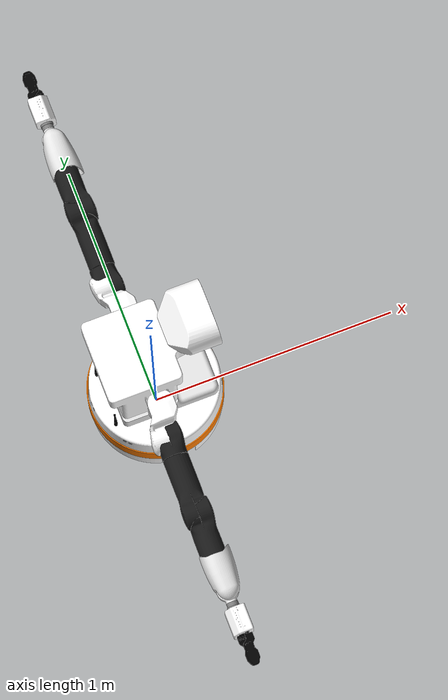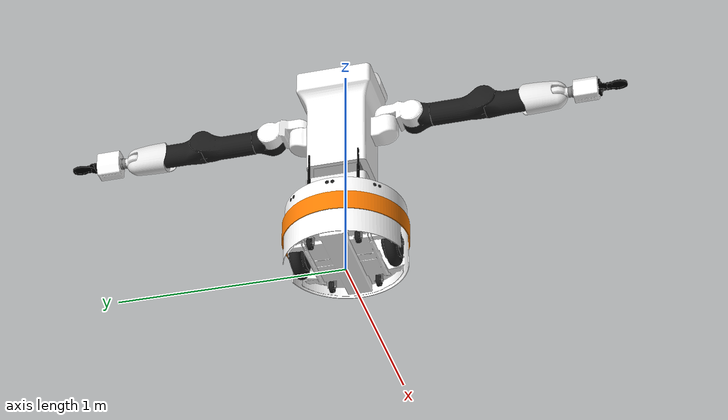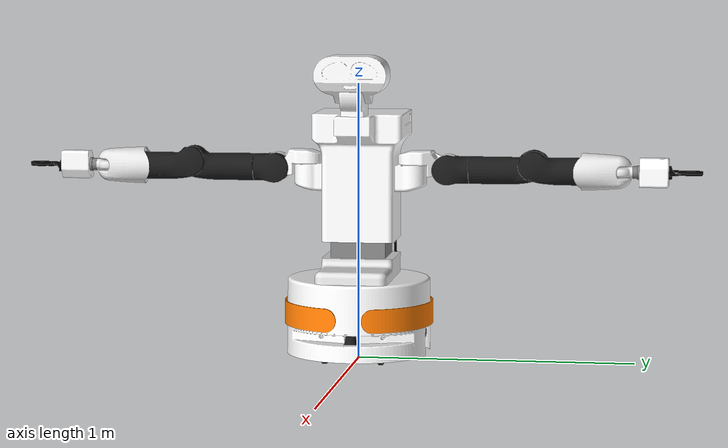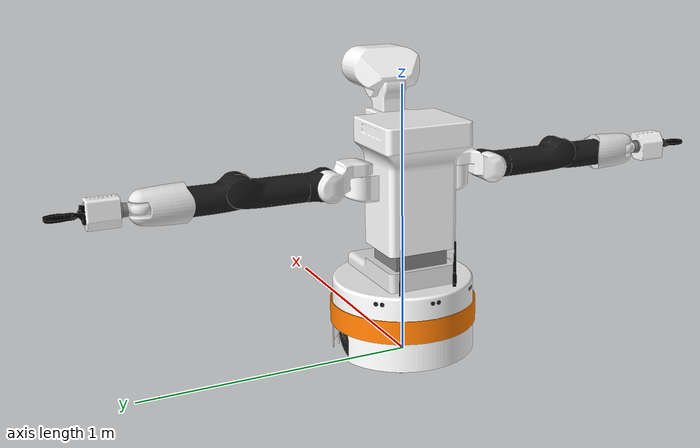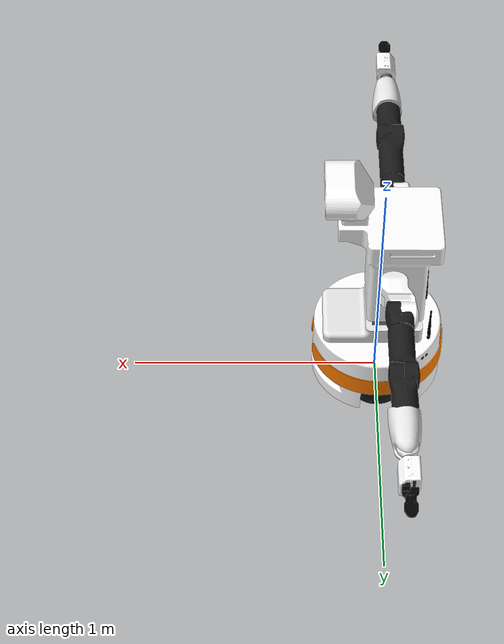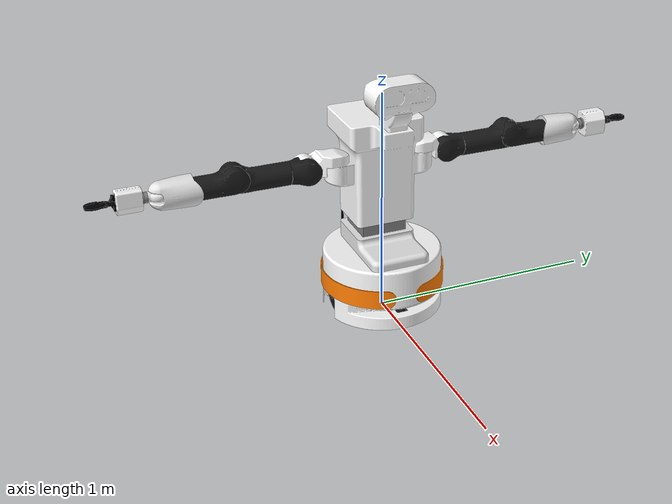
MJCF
<?xml version="1.0" ?>
<mujoco model="tiago_dual">
	<compiler meshdir="../assets/meshes" texturedir="../assets/textures" angle="radian" autolimits="true" balanceinertia="true" boundmass="0.000001" boundinertia="0.000001"/>
	<default>
		<default class="tiago_dual_visual">
			<geom contype="0" conaffinity="0"/>
		</default>
		<default class="tiago_dual_collision">
			<geom rgba="1.0 0.0 0.0 0.0"/>
		</default>
	</default>
	<asset>
		<mesh name="base" file="stl/base.stl" scale="1.0 1.0 1.0"/>
		<mesh name="base_collision" file="stl/base_collision.stl" scale="1.0 1.0 1.0"/>
		<mesh name="sick_tim551" file="stl/sick_tim551.stl" scale="1.0 1.0 1.0"/>
		<mesh name="srf05" file="stl/srf05.stl" scale="1.0 1.0 1.0"/>
		<mesh name="antenna" file="stl/antenna.stl" scale="1.0 1.0 1.0"/>
		<mesh name="torso_fix" file="stl/torso_fix.stl" scale="1.0 1.0 1.0"/>
		<mesh name="base_ring" file="stl/base_ring.stl" scale="1.0 1.0 1.0"/>
		<mesh name="wheel" file="stl/wheel.stl" scale="1.0 1.0 1.0"/>
		<mesh name="caster_1" file="stl/caster_1.stl" scale="1.0 1.0 1.0"/>
		<mesh name="caster_2" file="stl/caster_2.stl" scale="1.0 1.0 1.0"/>
		<mesh name="torso_lift_dual_arm" file="stl/torso_lift_dual_arm.stl" scale="1.0 1.0 1.0"/>
		<mesh name="torso_lift_collision_shoulder" file="stl/torso_lift_collision_shoulder.stl" scale="1.0 1.0 1.0"/>
		<mesh name="torso_lift_collision_core" file="stl/torso_lift_collision_core.stl" scale="1.0 1.0 1.0"/>
		<mesh name="torso_lift_collision_neck" file="stl/torso_lift_collision_neck.stl" scale="1.0 1.0 1.0"/>
		<mesh name="head_1" file="stl/head_1.stl" scale="1.0 1.0 1.0"/>
		<mesh name="head_1_collision" file="stl/head_1_collision.stl" scale="1.0 1.0 1.0"/>
		<mesh name="head_2" file="stl/head_2.stl" scale="1.0 1.0 1.0"/>
		<mesh name="head_2_collision" file="stl/head_2_collision.stl" scale="1.0 1.0 1.0"/>
		<mesh name="arm_1" file="stl/arm_1.stl" scale="1.0 1.0 1.0"/>
		<mesh name="arm_1__1_0__1_0__1_0" file="stl/arm_1.stl" scale="-1.0 -1.0 -1.0"/>
		<mesh name="arm_1_collision" file="stl/arm_1_collision.stl" scale="1.0 1.0 1.0"/>
		<mesh name="arm_1_collision__1_0__1_0__1_0" file="stl/arm_1_collision.stl" scale="-1.0 -1.0 -1.0"/>
		<mesh name="arm_2" file="stl/arm_2.stl" scale="1.0 1.0 1.0"/>
		<mesh name="arm_2__1_0__1_0__1_0" file="stl/arm_2.stl" scale="-1.0 -1.0 -1.0"/>
		<mesh name="arm_2_collision" file="stl/arm_2_collision.stl" scale="1.0 1.0 1.0"/>
		<mesh name="arm_2_collision__1_0__1_0__1_0" file="stl/arm_2_collision.stl" scale="-1.0 -1.0 -1.0"/>
		<mesh name="arm_3" file="stl/arm_3.stl" scale="1.0 1.0 1.0"/>
		<mesh name="arm_3__1_0__1_0__1_0" file="stl/arm_3.stl" scale="-1.0 -1.0 -1.0"/>
		<mesh name="arm_3_collision" file="stl/arm_3_collision.stl" scale="1.0 1.0 1.0"/>
		<mesh name="arm_3_collision__1_0__1_0__1_0" file="stl/arm_3_collision.stl" scale="-1.0 -1.0 -1.0"/>
		<mesh name="arm_4" file="stl/arm_4.stl" scale="1.0 1.0 1.0"/>
		<mesh name="arm_4__1_0__1_0__1_0" file="stl/arm_4.stl" scale="-1.0 -1.0 -1.0"/>
		<mesh name="arm_4_collision" file="stl/arm_4_collision.stl" scale="1.0 1.0 1.0"/>
		<mesh name="arm_4_collision__1_0__1_0__1_0" file="stl/arm_4_collision.stl" scale="-1.0 -1.0 -1.0"/>
		<mesh name="arm_5_wrist_2017" file="stl/arm_5_wrist_2017.stl" scale="1.0 1.0 1.0"/>
		<mesh name="arm_5_wrist_2017__1_0__1_0__1_0" file="stl/arm_5_wrist_2017.stl" scale="-1.0 -1.0 -1.0"/>
		<mesh name="arm_5_collision_wrist_2017" file="stl/arm_5_collision_wrist_2017.stl" scale="1.0 1.0 1.0"/>
		<mesh name="arm_5_collision_wrist_2017__1_0__1_0__1_0" file="stl/arm_5_collision_wrist_2017.stl" scale="-1.0 -1.0 -1.0"/>
		<mesh name="arm_6_wrist_2017" file="stl/arm_6_wrist_2017.stl" scale="1.0 1.0 1.0"/>
		<mesh name="arm_6_wrist_2017__1_0__1_0__1_0" file="stl/arm_6_wrist_2017.stl" scale="-1.0 -1.0 -1.0"/>
		<mesh name="arm_6_collision_wrist_2017" file="stl/arm_6_collision_wrist_2017.stl" scale="1.0 1.0 1.0"/>
		<mesh name="arm_6_collision_wrist_2017__1_0__1_0__1_0" file="stl/arm_6_collision_wrist_2017.stl" scale="-1.0 -1.0 -1.0"/>
		<mesh name="gripper_link" file="stl/gripper_link.stl" scale="1.0 1.0 1.0"/>
		<mesh name="gripper_link_collision" file="stl/gripper_link_collision.stl" scale="1.0 1.0 1.0"/>
		<mesh name="gripper_finger_link_1_000092625617981_0_9999073147773743_1_0" file="stl/gripper_finger_link.stl" scale="1.000092625617981 0.9999073147773743 1.0"/>
		<mesh name="gripper_finger_link__1_000092625617981__0_9999073147773743_1_0" file="stl/gripper_finger_link.stl" scale="-1.000092625617981 -0.9999073147773743 1.0"/>
		<material name="M_White" rgba="1.0 1.0 1.0 1.0" emission="0.0"/>
		<material name="M_DarkGrey" rgba="0.10000000149011612 0.10000000149011612 0.10000000149011612 1.0" emission="0.0"/>
		<material name="M_Black" rgba="0.0 0.0 0.0 1.0"/>
		<material name="M_LightGrey" rgba="0.8999999761581421 0.8999999761581421 0.8999999761581421 1.0" emission="0.0"/>
		<material name="M_Orange" rgba="1.0 0.4869999885559082 0.0 1.0"/>
		<material name="M_Grey" rgba="0.699999988079071 0.699999988079071 0.699999988079071 1.0" emission="0.0"/>
	</asset>
	<worldbody>
		<body name="tiago_dual" pos="0.0 0.0 0.0" quat="1.0 0.0 0.0 0.0">
			<joint name="odom_vel_lin_x_joint" type="slide" axis="1.0 0.0 0.0"/>
			<joint name="odom_vel_lin_y_joint" type="slide" axis="0.0 1.0 0.0"/>
			<joint name="odom_vel_ang_z_joint" type="hinge" axis="0.0 0.0 1.0"/>
			<body name="base_footprint" pos="0.0 0.0 0.0" quat="1.0 0.0 0.0 0.0">
				<body name="base_cover_link" pos="0.0 0.0 0.12999999523162842" quat="1.0 0.0 0.0 0.0">
					<inertial mass="0.533096194267273" pos="-0.01842234469950199 -1.1418089584935842e-08 0.17250001430511475" quat="0.7070515155792236 0.008976935409009457 0.008978109806776047 0.7070480585098267" diaginertia="0.018984170630574226 0.021554354578256607 0.03799857571721077"/>
					<geom name="base_cover_link_geom_tiago_dual_visual_0_base_ring" type="mesh" pos="0.0 0.0 0.0" quat="1.0 0.0 0.0 0.0" mesh="base_ring" material="M_Orange" class="tiago_dual_visual"/>
				</body>
				<body name="base_link" pos="0.0 0.0 0.09849999845027924" quat="1.0 0.0 0.0 0.0">
					<inertial mass="4.583009719848633" pos="0.008795303292572498 4.891760181635618e-05 0.18509966135025024" quat="0.9999969601631165 -0.0009502366883680224 0.0022169812582433224 -0.0005487297312356532" diaginertia="0.19431790709495544 0.21078379452228546 0.24757026135921478"/>
					<geom name="base_link_geom_tiago_dual_visual_0_base" type="mesh" pos="0.0 0.0 0.0" quat="1.0 0.0 0.0 0.0" mesh="base" material="M_White" class="tiago_dual_visual"/>
					<geom name="base_link_geom_collision_0_base_collision" type="mesh" pos="0.0 0.0 0.0" quat="1.0 0.0 0.0 0.0" mesh="base_collision" class="tiago_dual_collision"/>
					<body name="base_sonar_03_link" pos="-0.18299999833106995 0.18299999833106995 0.17299999296665192" quat="0.3826834261417389 0.0 0.0 0.9238795042037964">
						<inertial mass="0.0032655922695994377" pos="-0.17975224554538727 0.1797652393579483 0.1729976385831833" quat="0.7072985172271729 0.002778780646622181 0.0014203093014657497 0.706908106803894" diaginertia="1.5969527566994657e-07 6.359992426041572e-07 6.706197837047512e-07"/>
						<geom name="base_sonar_03_link_geom_tiago_dual_visual_0_srf05" type="mesh" pos="0.0 0.0 0.0" quat="1.0 0.0 0.0 0.0" mesh="srf05" material="M_DarkGrey" class="tiago_dual_visual"/>
					</body>
					<body name="base_sonar_01_link" pos="-0.18299999833106995 -0.18299999833106995 0.17299999296665192" quat="-0.3826834261417389 0.0 0.0 0.9238795042037964">
						<inertial mass="0.0032655922695994377" pos="-0.1797652393579483 -0.17975224554538727 0.1729976385831833" quat="0.7072985172271729 0.002778780646622181 0.0014203093014657497 0.706908106803894" diaginertia="1.5969527566994657e-07 6.359992426041572e-07 6.706197837047512e-07"/>
						<geom name="base_sonar_01_link_geom_tiago_dual_visual_0_srf05" type="mesh" pos="0.0 0.0 0.0" quat="1.0 0.0 0.0 0.0" mesh="srf05" material="M_DarkGrey" class="tiago_dual_visual"/>
					</body>
					<body name="base_mic_front_right_link" pos="0.2318200021982193 -0.03901999816298485 0.19499999284744263" quat="1.0 0.0 0.0 0.0"/>
					<body name="base_mic_back_right_link" pos="-0.10819999873638153 -0.13788999617099762 0.19499999284744263" quat="1.0 0.0 0.0 0.0"/>
					<body name="base_antenna_right_link" pos="-0.20100000500679016 -0.10620000213384628 0.19499999284744263" quat="1.0 0.0 0.0 0.0">
						<inertial mass="0.028692401945590973" pos="-0.20105348527431488 -0.10619985312223434 0.2664972245693207" quat="-0.0014542610151693225 0.7070494294166565 0.0014557811664417386 0.7071611285209656" diaginertia="4.4050278802387766e-07 0.0002167977945646271 0.00021680167992599308"/>
						<geom name="base_antenna_right_link_geom_tiago_dual_visual_0_antenna" type="mesh" pos="0.0 0.0 0.0" quat="1.0 0.0 0.0 0.0" mesh="antenna" material="M_Black" class="tiago_dual_visual"/>
						<geom name="base_antenna_right_link_geom_collision_0" type="cylinder" pos="0.0 0.0 0.08500000089406967" quat="1.0 0.0 0.0 0.0" size="0.004999999888241291 0.08500000089406967 0.0" class="tiago_dual_collision"/>
					</body>
					<body name="suspension_right_link" pos="0.0 0.0 0.0" quat="1.0 0.0 0.0 0.0">
						<joint name="suspension_right_joint" type="slide" pos="0.0 0.0 0.0" range="-0.004999999888241291 0.004999999888241291" axis="0.0 0.0 1.0"/>
						<body name="wheel_right_link" pos="0.0 -0.2021999955177307 0.0" quat="0.7071067690849304 -0.7071067690849304 0.0 0.0">
							<inertial mass="4.9378132820129395" pos="-2.407864485576283e-06 -0.20232069492340088 0.0984966903924942" quat="-0.7033625841140747 0.00011322840873617679 0.00013592917821370065 0.7108312845230103" diaginertia="0.01838645152747631 0.018392162397503853 0.02075279876589775"/>
							<geom name="wheel_right_link_geom_tiago_dual_visual_0_wheel" type="mesh" pos="0.0 0.0 0.0" quat="1.0 0.0 0.0 0.0" mesh="wheel" material="M_DarkGrey" class="tiago_dual_visual"/>
							<geom name="wheel_right_link_geom_collision_0" type="sphere" pos="0.0 0.0 0.0" quat="1.0 0.0 0.0 0.0" size="0.09849999845027924 0.0 0.0" class="tiago_dual_collision"/>
							<joint name="wheel_right_joint" type="hinge" pos="0.0 0.0 0.0" axis="0.0 0.0 1.0"/>
						</body>
					</body>
					<body name="suspension_left_link" pos="0.0 0.0 0.0" quat="1.0 0.0 0.0 0.0">
						<joint name="suspension_left_joint" type="slide" pos="0.0 0.0 0.0" range="-0.004999999888241291 0.004999999888241291" axis="0.0 0.0 1.0"/>
						<body name="wheel_left_link" pos="0.0 0.2021999955177307 0.0" quat="0.7071067690849304 -0.7071067690849304 0.0 0.0">
							<inertial mass="4.9378132820129395" pos="-2.407864485576283e-06 0.20232069492340088 0.09850330650806427" quat="0.7108312845230103 -0.00013592917821370065 -0.00011322840873617679 -0.7033625841140747" diaginertia="0.01838645152747631 0.018392162397503853 0.02075279876589775"/>
							<geom name="wheel_left_link_geom_tiago_dual_visual_0_wheel" type="mesh" pos="0.0 0.0 0.0" quat="-6.123234262925839e-17 1.0 0.0 0.0" mesh="wheel" material="M_DarkGrey" class="tiago_dual_visual"/>
							<geom name="wheel_left_link_geom_collision_0" type="sphere" pos="0.0 0.0 0.0" quat="1.0 0.0 0.0 0.0" size="0.09849999845027924 0.0 0.0" class="tiago_dual_collision"/>
							<joint name="wheel_left_joint" type="hinge" pos="0.0 0.0 0.0" axis="0.0 0.0 1.0"/>
						</body>
					</body>
					<body name="caster_front_right_1_link" pos="0.16949999332427979 -0.10199999809265137 -0.03350000083446503" quat="1.0 0.0 0.0 0.0">
						<inertial mass="0.012721667066216469" pos="0.1584390103816986 -0.10197509080171585 0.03501972556114197" quat="0.5640944242477417 -5.7430843298789114e-05 0.8257097601890564 0.0009352568886242807" diaginertia="1.7161858067993307e-06 1.6465297449030913e-05 1.6936963220359758e-05"/>
						<geom name="caster_front_right_1_link_geom_tiago_dual_visual_0_caster_1" type="mesh" pos="0.0 0.0 0.0" quat="1.0 0.0 0.0 0.0" mesh="caster_1" material="M_Grey" class="tiago_dual_visual"/>
						<joint name="caster_front_right_1_joint" type="hinge" pos="0.0 0.0 0.0" axis="0.0 0.0 1.0"/>
						<body name="caster_front_right_2_link" pos="-0.01600000075995922 0.0 -0.03999999910593033" quat="0.7071067690849304 -0.7071067690849304 0.0 0.0">
							<inertial mass="0.0963592454791069" pos="0.15349917113780975 -0.10200051963329315 0.024999601766467094" quat="-0.5353952646255493 1.7683147234492935e-05 2.6323896236135624e-06 0.8446016311645508" diaginertia="2.267268610012252e-05 2.2677813831251115e-05 2.7069650968769565e-05"/>
							<geom name="caster_front_right_2_link_geom_tiago_dual_visual_0_caster_2" type="mesh" pos="0.0 0.0 0.0" quat="1.0 0.0 0.0 0.0" mesh="caster_2" material="M_DarkGrey" class="tiago_dual_visual"/>
							<geom name="caster_front_right_2_link_geom_collision_0" type="sphere" pos="0.0 0.0 0.0" quat="1.0 0.0 0.0 0.0" size="0.02500000037252903 0.0 0.0" class="tiago_dual_collision"/>
							<joint name="caster_front_right_2_joint" type="hinge" pos="0.0 0.0 0.0" axis="0.0 0.0 1.0"/>
						</body>
					</body>
					<body name="caster_front_left_1_link" pos="0.16949999332427979 0.10199999809265137 -0.03350000083446503" quat="1.0 0.0 0.0 0.0">
						<inertial mass="0.012721667066216469" pos="0.1584390103816986 0.10202490538358688 0.03501972556114197" quat="0.5640944242477417 -5.7430843298789114e-05 0.8257097601890564 0.0009352568886242807" diaginertia="1.7161858067993307e-06 1.6465297449030913e-05 1.6936963220359758e-05"/>
						<geom name="caster_front_left_1_link_geom_tiago_dual_visual_0_caster_1" type="mesh" pos="0.0 0.0 0.0" quat="1.0 0.0 0.0 0.0" mesh="caster_1" material="M_Grey" class="tiago_dual_visual"/>
						<joint name="caster_front_left_1_joint" type="hinge" pos="0.0 0.0 0.0" axis="0.0 0.0 1.0"/>
						<body name="caster_front_left_2_link" pos="-0.01600000075995922 0.0 -0.03999999910593033" quat="0.7071067690849304 -0.7071067690849304 0.0 0.0">
							<inertial mass="0.0963592454791069" pos="0.15349917113780975 0.10199947655200958 0.024999601766467094" quat="-0.5353952646255493 1.7683147234492935e-05 2.6323896236135624e-06 0.8446016311645508" diaginertia="2.267268610012252e-05 2.2677813831251115e-05 2.7069650968769565e-05"/>
							<geom name="caster_front_left_2_link_geom_tiago_dual_visual_0_caster_2" type="mesh" pos="0.0 0.0 0.0" quat="1.0 0.0 0.0 0.0" mesh="caster_2" material="M_DarkGrey" class="tiago_dual_visual"/>
							<geom name="caster_front_left_2_link_geom_collision_0" type="sphere" pos="0.0 0.0 0.0" quat="1.0 0.0 0.0 0.0" size="0.02500000037252903 0.0 0.0" class="tiago_dual_collision"/>
							<joint name="caster_front_left_2_joint" type="hinge" pos="0.0 0.0 0.0" axis="0.0 0.0 1.0"/>
						</body>
					</body>
					<body name="caster_back_right_1_link" pos="-0.17350000143051147 -0.10199999809265137 -0.03350000083446503" quat="1.0 0.0 0.0 0.0">
						<inertial mass="0.012721667066216469" pos="-0.18456098437309265 -0.10197509080171585 0.03501972556114197" quat="0.5640944242477417 -5.7430843298789114e-05 0.8257097601890564 0.0009352568886242807" diaginertia="1.7161858067993307e-06 1.6465297449030913e-05 1.6936963220359758e-05"/>
						<geom name="caster_back_right_1_link_geom_tiago_dual_visual_0_caster_1" type="mesh" pos="0.0 0.0 0.0" quat="1.0 0.0 0.0 0.0" mesh="caster_1" material="M_Grey" class="tiago_dual_visual"/>
						<joint name="caster_back_right_1_joint" type="hinge" pos="0.0 0.0 0.0" axis="0.0 0.0 1.0"/>
						<body name="caster_back_right_2_link" pos="-0.01600000075995922 0.0 -0.03999999910593033" quat="0.7071067690849304 -0.7071067690849304 0.0 0.0">
							<inertial mass="0.0963592454791069" pos="-0.1895008236169815 -0.10200051963329315 0.024999601766467094" quat="-0.5353952646255493 1.7683147234492935e-05 2.6323896236135624e-06 0.8446016311645508" diaginertia="2.267268610012252e-05 2.2677813831251115e-05 2.7069650968769565e-05"/>
							<geom name="caster_back_right_2_link_geom_tiago_dual_visual_0_caster_2" type="mesh" pos="0.0 0.0 0.0" quat="1.0 0.0 0.0 0.0" mesh="caster_2" material="M_DarkGrey" class="tiago_dual_visual"/>
							<geom name="caster_back_right_2_link_geom_collision_0" type="sphere" pos="0.0 0.0 0.0" quat="1.0 0.0 0.0 0.0" size="0.02500000037252903 0.0 0.0" class="tiago_dual_collision"/>
							<joint name="caster_back_right_2_joint" type="hinge" pos="0.0 0.0 0.0" axis="0.0 0.0 1.0"/>
						</body>
					</body>
					<body name="caster_back_left_1_link" pos="-0.17350000143051147 0.10199999809265137 -0.03350000083446503" quat="1.0 0.0 0.0 0.0">
						<inertial mass="0.012721667066216469" pos="-0.18456098437309265 0.10202490538358688 0.03501972556114197" quat="0.5640944242477417 -5.7430843298789114e-05 0.8257097601890564 0.0009352568886242807" diaginertia="1.7161858067993307e-06 1.6465297449030913e-05 1.6936963220359758e-05"/>
						<geom name="caster_back_left_1_link_geom_tiago_dual_visual_0_caster_1" type="mesh" pos="0.0 0.0 0.0" quat="1.0 0.0 0.0 0.0" mesh="caster_1" material="M_Grey" class="tiago_dual_visual"/>
						<joint name="caster_back_left_1_joint" type="hinge" pos="0.0 0.0 0.0" axis="0.0 0.0 1.0"/>
						<body name="caster_back_left_2_link" pos="-0.01600000075995922 0.0 -0.03999999910593033" quat="0.7071067690849304 -0.7071067690849304 0.0 0.0">
							<inertial mass="0.0963592454791069" pos="-0.1895008236169815 0.10199947655200958 0.024999601766467094" quat="-0.5353952646255493 1.7683147234492935e-05 2.6323896236135624e-06 0.8446016311645508" diaginertia="2.267268610012252e-05 2.2677813831251115e-05 2.7069650968769565e-05"/>
							<geom name="caster_back_left_2_link_geom_tiago_dual_visual_0_caster_2" type="mesh" pos="0.0 0.0 0.0" quat="1.0 0.0 0.0 0.0" mesh="caster_2" material="M_DarkGrey" class="tiago_dual_visual"/>
							<geom name="caster_back_left_2_link_geom_collision_0" type="sphere" pos="0.0 0.0 0.0" quat="1.0 0.0 0.0 0.0" size="0.02500000037252903 0.0 0.0" class="tiago_dual_collision"/>
							<joint name="caster_back_left_2_joint" type="hinge" pos="0.0 0.0 0.0" axis="0.0 0.0 1.0"/>
						</body>
					</body>
					<body name="torso_fixed_link" pos="-0.06199999898672104 0.0 0.19300000369548798" quat="1.0 0.0 0.0 0.0">
						<inertial mass="16.431100845336914" pos="-0.01745390146970749 1.3471870285997056e-09 0.23027999699115753" quat="0.998907744884491 -4.543129428213888e-09 -0.046725716441869736 2.8892905845623318e-08" diaginertia="0.11975406110286713 0.24629473686218262 0.30280017852783203"/>
						<geom name="torso_fixed_link_geom_tiago_dual_visual_0_torso_fix" type="mesh" pos="0.0 0.0 0.0" quat="1.0 0.0 0.0 0.0" mesh="torso_fix" material="M_LightGrey" class="tiago_dual_visual"/>
						<geom name="torso_fixed_link_geom_collision_0" type="box" pos="0.08500000089406967 0.0 0.019999999552965164" quat="1.0 0.0 0.0 0.0" size="0.20000000298023224 0.125 0.019999999552965164" class="tiago_dual_collision"/>
						<geom name="torso_fixed_link_geom_collision_1" type="box" pos="0.0 0.0 0.05000000074505806" quat="1.0 0.0 0.0 0.0" size="0.125 0.125 0.05000000074505806" class="tiago_dual_collision"/>
						<body name="torso_lift_link" pos="0.0 0.0 0.597000002861023" quat="1.0 0.0 0.0 0.0">
							<inertial mass="80.00180053710938" pos="-0.06386889517307281 3.838672273559496e-05 0.6812766790390015" quat="-0.6953124403953552 0.12151610851287842 0.6976648569107056 0.12263037264347076" diaginertia="1.1445907354354858 5.456185817718506 5.476551532745361"/>
							<geom name="torso_lift_link_geom_tiago_dual_visual_0_torso_lift_dual_arm" type="mesh" pos="0.0 0.0 0.0" quat="1.0 0.0 0.0 0.0" mesh="torso_lift_dual_arm" material="M_White" class="tiago_dual_visual"/>
							<geom name="torso_lift_link_geom_collision_0_torso_lift_collision_shoulder" type="mesh" pos="-0.13099999725818634 0.17000000178813934 -0.02556000091135502" quat="1.0 0.0 0.0 0.0" mesh="torso_lift_collision_shoulder" class="tiago_dual_collision"/>
							<geom name="torso_lift_link_geom_collision_1_torso_lift_collision_shoulder" type="mesh" pos="-0.13099999725818634 -0.1899999976158142 -0.02556000091135502" quat="1.0 0.0 0.0 0.0" mesh="torso_lift_collision_shoulder" class="tiago_dual_collision"/>
							<geom name="torso_lift_link_geom_collision_2_torso_lift_collision_core" type="mesh" pos="0.0 0.0 0.0" quat="1.0 0.0 0.0 0.0" mesh="torso_lift_collision_core" class="tiago_dual_collision"/>
							<geom name="torso_lift_link_geom_collision_3_torso_lift_collision_neck" type="mesh" pos="0.0 0.0 0.0" quat="1.0 0.0 0.0 0.0" mesh="torso_lift_collision_neck" class="tiago_dual_collision"/>
							<joint name="torso_lift_joint" type="slide" pos="0.0 0.0 0.0" range="0.0 0.800000011920929" axis="0.0 0.0 1.0"/>
							<body name="arm_left_1_link" pos="0.02556000091135502 0.1899999976158142 -0.17100000381469727" quat="4.329780301713277e-17 0.7071067690849304 0.7071067690849304 4.329780301713277e-17">
								<inertial mass="2.326556444168091" pos="-0.062415264546871185 0.26109611988067627 0.7068326473236084" quat="0.9397298693656921 -0.2696459889411926 -0.05045083537697792 -0.20409207046031952" diaginertia="0.002655229065567255 0.02464391104876995 0.024779949337244034"/>
								<geom name="arm_left_1_link_geom_tiago_dual_visual_0_arm_1" type="mesh" pos="0.0 0.0 0.0" quat="6.123234262925839e-17 1.0 0.0 0.0" mesh="arm_1" material="M_White" class="tiago_dual_visual"/>
								<geom name="arm_left_1_link_geom_collision_0_arm_1_collision" type="mesh" pos="0.0 0.0 0.0" quat="6.123234262925839e-17 1.0 0.0 0.0" mesh="arm_1_collision" class="tiago_dual_collision"/>
								<joint name="arm_left_1_joint" type="hinge" pos="0.0 0.0 0.0" range="-1.1780972480773926 1.5707963705062866" axis="0.0 0.0 1.0"/>
								<body name="arm_left_2_link" pos="0.125 -0.019500000402331352 0.03099999949336052" quat="0.7071067690849304 0.7071067690849304 -3.189250438235362e-17 3.189250438235362e-17">
									<inertial mass="1.2833430767059326" pos="-0.06404110789299011 0.3396865129470825 0.6863976120948792" quat="0.004454121924936771 0.9991291165351868 0.0009602801874279976 -0.041475653648376465" diaginertia="0.0018821029225364327 0.003341596806421876 0.0034246365539729595"/>
									<geom name="arm_left_2_link_geom_tiago_dual_visual_0_arm_2" type="mesh" pos="0.0 0.0 0.0" quat="6.123234262925839e-17 0.0 0.0 1.0" mesh="arm_2__1_0__1_0__1_0" material="M_DarkGrey" class="tiago_dual_visual"/>
									<geom name="arm_left_2_link_geom_collision_0_arm_2_collision" type="mesh" pos="0.0 0.0 0.0" quat="6.123234262925839e-17 0.0 0.0 1.0" mesh="arm_2_collision__1_0__1_0__1_0" class="tiago_dual_collision"/>
									<joint name="arm_left_2_joint" type="hinge" pos="6.938893903907228e-18 -1.5407439555097887e-33 -0.0" range="-1.1780972480773926 1.5707963705062866" axis="0.0 0.0 1.0"/>
									<body name="arm_left_3_link" pos="0.08950000256299973 0.0 -0.001500000013038516" quat="0.5 0.5 0.5 0.5">
										<inertial mass="4.2203826904296875" pos="-0.06056949496269226 0.2831023633480072 0.6934170722961426" quat="-0.35075223445892334 -0.5870867371559143 -0.41339531540870667 0.6011708378791809" diaginertia="0.005868874955922365 0.08974360674619675 0.09042287617921829"/>
										<geom name="arm_left_3_link_geom_tiago_dual_visual_0_arm_3" type="mesh" pos="0.0 0.0 0.0" quat="6.123234262925839e-17 0.0 0.0 1.0" mesh="arm_3__1_0__1_0__1_0" material="M_DarkGrey" class="tiago_dual_visual"/>
										<geom name="arm_left_3_link_geom_collision_0_arm_3_collision" type="mesh" pos="0.0 0.0 0.0" quat="6.123234262925839e-17 0.0 0.0 1.0" mesh="arm_3_collision__1_0__1_0__1_0" class="tiago_dual_collision"/>
										<joint name="arm_left_3_joint" type="hinge" pos="3.0814879110195774e-33 0.0 0.0" range="-0.7853981852531433 3.9269907474517822" axis="0.0 0.0 1.0"/>
										<body name="arm_left_4_link" pos="-0.019999999552965164 -0.027000000700354576 0.22200000286102295" quat="0.5 0.5 -0.5 0.5">
											<inertial mass="3.67008900642395" pos="-0.007270804140716791 0.7061768174171448 0.6934573650360107" quat="0.966965913772583 -0.22171927988529205 -0.08499585837125778 -0.09269924461841583" diaginertia="0.005166410934180021 0.04315481707453728 0.04374336823821068"/>
											<geom name="arm_left_4_link_geom_tiago_dual_visual_0_arm_4" type="mesh" pos="0.0 0.0 0.0" quat="1.0 0.0 0.0 0.0" mesh="arm_4__1_0__1_0__1_0" material="M_DarkGrey" class="tiago_dual_visual"/>
											<geom name="arm_left_4_link_geom_collision_0_arm_4_collision" type="mesh" pos="0.0 0.0 0.0" quat="1.0 0.0 0.0 0.0" mesh="arm_4_collision__1_0__1_0__1_0" class="tiago_dual_collision"/>
											<joint name="arm_left_4_joint" type="hinge" pos="5.551115123125783e-17 1.8488927466117464e-32 1.8488927466117464e-32" range="-0.39269909262657166 2.356194496154785" axis="0.0 0.0 1.0"/>
											<body name="arm_left_5_link" pos="0.16200000047683716 -0.019999999552965164 -0.027000000700354576" quat="0.7071067690849304 -3.679904033663643e-18 -0.7071067690849304 5.519856298649649e-17">
												<inertial mass="3.093937397003174" pos="-0.04984248802065849 0.7072207927703857 0.6863790154457092" quat="0.6893705129623413 -0.0012747449800372124 0.7243995666503906 0.0034514684230089188" diaginertia="0.006034791935235262 0.028495630249381065 0.029476221650838852"/>
												<geom name="arm_left_5_link_geom_tiago_dual_visual_0_arm_5_wrist_2017" type="mesh" pos="0.0 0.0 0.0" quat="1.0 0.0 0.0 0.0" mesh="arm_5_wrist_2017__1_0__1_0__1_0" material="M_LightGrey" class="tiago_dual_visual"/>
												<geom name="arm_left_5_link_geom_collision_0_arm_5_collision_wrist_2017" type="mesh" pos="0.0 0.0 0.0" quat="1.0 0.0 0.0 0.0" mesh="arm_5_collision_wrist_2017__1_0__1_0__1_0" class="tiago_dual_collision"/>
												<joint name="arm_left_5_joint" type="hinge" pos="1.1102230246251565e-16 3.469446951953614e-18 -3.697785493223493e-32" range="-2.094395160675049 2.094395160675049" axis="0.0 0.0 1.0"/>
												<body name="arm_left_6_link" pos="0.0 0.0 -0.15000000596046448" quat="-0.5 0.5 0.5 0.5">
													<inertial mass="0.3939484655857086" pos="-0.054436106234788895 0.9269351959228516 0.6865178942680359" quat="0.9999984502792358 0.000989691005088389 3.2063271646620706e-05 0.0014668669318780303" diaginertia="0.00016052329738158733 0.00039506948087364435 0.00048799763317219913"/>
													<geom name="arm_left_6_link_geom_tiago_dual_visual_0_arm_6_wrist_2017" type="mesh" pos="0.0 0.0 0.0" quat="6.123234262925839e-17 1.0 0.0 0.0" mesh="arm_6_wrist_2017__1_0__1_0__1_0" material="M_LightGrey" class="tiago_dual_visual"/>
													<geom name="arm_left_6_link_geom_collision_0_arm_6_collision_wrist_2017" type="mesh" pos="0.0 0.0 0.0" quat="6.123234262925839e-17 1.0 0.0 0.0" mesh="arm_6_collision_wrist_2017__1_0__1_0__1_0" class="tiago_dual_collision"/>
													<joint name="arm_left_6_joint" type="hinge" pos="0.0 0.0 0.0" range="-1.4137166738510132 1.4137166738510132" axis="0.0 0.0 1.0"/>
													<body name="arm_left_7_link" pos="0.0 0.0 0.0" quat="0.5 0.5 0.5 0.5">
														<joint name="arm_left_7_joint" type="hinge" pos="0.0 0.0 0.0" range="-2.094395160675049 2.094395160675049" axis="0.0 0.0 1.0"/>
														<body name="arm_left_tool_link" pos="6.938893903907228e-18 0.0 -0.04600000008940697" quat="-0.5 0.5 -0.5 -0.5">
															<inertial mass="0.0007853981805965304" pos="2.220446154715841e-19 0.0 -0.04699999839067459" quat="0.0 0.7071067690849304 0.0 0.7071067690849304" diaginertia="7.3303829672966e-09 7.3303829672966e-09 9.817476609441655e-09"/>
															<geom name="arm_left_tool_link_geom_tiago_dual_visual_0" type="cylinder" pos="0.0010000000474974513 0.0 0.0" quat="0.7071067690849304 0.0 0.7071067690849304 0.0" size="0.004999999888241291 0.0024999999441206455 0.0" class="tiago_dual_visual"/>
															<geom name="arm_left_tool_link_geom_collision_0" type="cylinder" pos="0.0010000000474974513 0.0 0.0" quat="0.7071067690849304 0.0 0.7071067690849304 0.0" size="0.004999999888241291 0.0024999999441206455 0.0" class="tiago_dual_collision"/>
															<body name="wrist_left_ft_link" pos="0.007849999703466892 0.0 0.0" quat="0.5 0.5 0.5 0.5">
																<inertial mass="0.04993954300880432" pos="0.007849999703466892 0.0 0.0" quat="1.0 0.0 0.0 0.0" diaginertia="7.346272923314245e-06 7.346272923314245e-06 1.2640946806641296e-05"/>
																<geom name="wrist_left_ft_link_geom_tiago_dual_visual_0" type="cylinder" pos="0.0 0.0 0.0" quat="1.0 0.0 0.0 0.0" size="0.02250000089406967 0.007849999703466892 0.0" class="tiago_dual_visual"/>
																<geom name="wrist_left_ft_link_geom_collision_0" type="cylinder" pos="0.0 0.0 0.0" quat="1.0 0.0 0.0 0.0" size="0.02250000089406967 0.007849999703466892 0.0" class="tiago_dual_collision"/>
																<body name="wrist_left_ft_tool_link" pos="0.0 0.0 0.012725000269711018" quat="0.5 -0.5 -0.5 -0.5">
																	<inertial mass="0.03828816115856171" pos="0.0 0.0 0.012725000269711018" quat="0.6532815098762512 -0.27059805393218994 0.6532815098762512 -0.27059805393218994" diaginertia="6.285838935582433e-06 6.285838935582433e-06 1.1965050362050533e-05"/>
																	<geom name="wrist_left_ft_tool_link_geom_tiago_dual_visual_0" type="cylinder" pos="0.0 0.0 0.0" quat="0.7071067690849304 0.0 0.7071067690849304 0.0" size="0.02500000037252903 0.004875000100582838 0.0" class="tiago_dual_visual"/>
																	<geom name="wrist_left_ft_tool_link_geom_collision_0" type="cylinder" pos="0.0 0.0 0.0" quat="0.7071067690849304 0.0 0.7071067690849304 0.0" size="0.02500000037252903 0.004875000100582838 0.0" class="tiago_dual_collision"/>
																	<body name="gripper_left_link" pos="0.009999999776482582 0.0 0.0" quat="7.028376979084235e-17 0.7071067690849304 1.631183789778442e-17 -0.7071067690849304">
																		<inertial mass="1.1609281301498413" pos="0.055877234786748886 -6.149214186734753e-06 -6.216389465407701e-06" quat="0.4374878406524658 0.5555110573768616 -0.43751391768455505 0.5555118322372437" diaginertia="0.0014065168797969818 0.004091456066817045 0.004576720762997866"/>
																		<geom name="gripper_left_link_geom_tiago_dual_visual_0_gripper_link" type="mesh" pos="0.0 0.0 0.0" quat="1.0 0.0 0.0 0.0" mesh="gripper_link" material="M_White" class="tiago_dual_visual"/>
																		<geom name="gripper_left_link_geom_collision_0_gripper_link_collision" type="mesh" pos="0.0 0.0 0.0" quat="1.0 0.0 0.0 0.0" mesh="gripper_link_collision" class="tiago_dual_collision"/>
																		<body name="gripper_left_left_finger_link" pos="0.0 0.0 0.0" quat="1.0 2.7733391199176196e-32 -4.930380657631324e-32 -2.7733391199176196e-32">
																			<inertial mass="0.10103759169578552" pos="-0.058255475014448166 1.1640191078186035 0.6875566244125366" quat="0.6956858038902283 -0.0912584662437439 0.7077611684799194 0.08226366341114044" diaginertia="2.8091548301745206e-05 0.0024298429489135742 0.0024481271393597126"/>
																			<geom name="gripper_left_left_finger_link_geom_tiago_dual_visual_0_gripper_finger_link" type="mesh" pos="0.0 0.0 0.0" quat="4.6326793381012976e-05 0.0 0.0 1.0" mesh="gripper_finger_link_1_000092625617981_0_9999073147773743_1_0" material="M_Black" class="tiago_dual_visual"/>
																			<geom name="gripper_left_left_finger_link_geom_collision_0" type="box" pos="-0.004999999888241291 0.0 -0.16500000655651093" quat="4.6326793381012976e-05 0.0 0.0 1.0" size="0.004999999888241291 0.02500000037252903 0.054999999701976776" class="tiago_dual_collision"/>
																			<joint name="gripper_left_left_finger_joint" type="slide" pos="-0.0 -0.0 6.162975822039155e-33" range="0.0 0.04500000178813934" axis="-1.0 0.0 0.0"/>
																		</body>
																		<body name="gripper_left_grasping_frame" pos="1.1102230246251565e-16 0.0 -0.11999999731779099" quat="0.49999815225601196 -0.5 0.5 0.500001847743988"/>
																		<body name="gripper_left_right_finger_link" pos="0.0 0.0 0.0" quat="1.0 2.7733391199176196e-32 -4.930380657631324e-32 -2.7733391199176196e-32">
																			<inertial mass="0.10103759169578552" pos="-0.058255475014448166 1.1640191078186035 0.6821131110191345" quat="-0.05466337502002716 0.6971017718315125 0.06641099601984024 0.7117939591407776" diaginertia="2.747980943240691e-05 0.0024304126854985952 0.0024481690488755703"/>
																			<geom name="gripper_left_right_finger_link_geom_tiago_dual_visual_0_gripper_finger_link" type="mesh" pos="0.0 0.0 0.0" quat="4.6326793381012976e-05 0.0 0.0 1.0" mesh="gripper_finger_link__1_000092625617981__0_9999073147773743_1_0" material="M_Black" class="tiago_dual_visual"/>
																			<geom name="gripper_left_right_finger_link_geom_collision_0" type="box" pos="0.004999999888241291 0.0 -0.16500000655651093" quat="4.6326793381012976e-05 0.0 0.0 1.0" size="0.004999999888241291 0.02500000037252903 0.054999999701976776" class="tiago_dual_collision"/>
																			<joint name="gripper_left_right_finger_joint" type="slide" pos="-0.0 -0.0 6.162975822039155e-33" range="0.0 0.04500000178813934" axis="1.0 0.0 0.0"/>
																		</body>
																	</body>
																	<body name="gripper_left_tool_link" pos="0.009999999776482582 0.0 0.0" quat="7.028376979084235e-17 0.7071067690849304 1.631183789778442e-17 -0.7071067690849304"/>
																</body>
															</body>
														</body>
													</body>
												</body>
											</body>
										</body>
									</body>
								</body>
							</body>
							<body name="arm_right_1_link" pos="0.02556000091135502 -0.1899999976158142 -0.17100000381469727" quat="0.7071067690849304 0.0 0.0 -0.7071067690849304">
								<inertial mass="2.326556444168091" pos="-0.010464733466506004 -0.26109611988067627 0.7068326473236084" quat="0.9397298693656921 -0.2696459889411926 0.05045083537697792 0.20409207046031952" diaginertia="0.002655229065567255 0.02464391104876995 0.024779949337244034"/>
								<geom name="arm_right_1_link_geom_tiago_dual_visual_0_arm_1" type="mesh" pos="0.0 0.0 0.0" quat="3.7493993930529855e-33 6.123234262925839e-17 1.0 6.123234262925839e-17" mesh="arm_1__1_0__1_0__1_0" material="M_White" class="tiago_dual_visual"/>
								<geom name="arm_right_1_link_geom_collision_0_arm_1_collision" type="mesh" pos="0.0 0.0 0.0" quat="3.7493993930529855e-33 6.123234262925839e-17 1.0 6.123234262925839e-17" mesh="arm_1_collision__1_0__1_0__1_0" class="tiago_dual_collision"/>
								<joint name="arm_right_1_joint" type="hinge" pos="0.0 0.0 0.0" range="-1.1780972480773926 1.5707963705062866" axis="0.0 0.0 1.0"/>
								<body name="arm_right_2_link" pos="0.125 -0.019500000402331352 -0.03099999949336052" quat="0.7071067690849304 -0.7071067690849304 0.0 0.0">
									<inertial mass="1.2833430767059326" pos="-0.04783888906240463 -0.3396865129470825 0.6863976120948792" quat="0.004454121924936771 0.9991291165351868 0.0009602801874279976 -0.041475653648376465" diaginertia="0.0018821029225364327 0.003341596806421876 0.0034246365539729595"/>
									<geom name="arm_right_2_link_geom_tiago_dual_visual_0_arm_2" type="mesh" pos="0.0 0.0 0.0" quat="1.0 0.0 0.0 0.0" mesh="arm_2" material="M_DarkGrey" class="tiago_dual_visual"/>
									<geom name="arm_right_2_link_geom_collision_0_arm_2_collision" type="mesh" pos="0.0 0.0 0.0" quat="1.0 0.0 0.0 0.0" mesh="arm_2_collision" class="tiago_dual_collision"/>
									<joint name="arm_right_2_joint" type="hinge" pos="0.0 0.0 0.0" range="-1.1780972480773926 1.5707963705062866" axis="0.0 0.0 1.0"/>
									<body name="arm_right_3_link" pos="0.08950000256299973 0.0 -0.001500000013038516" quat="-0.5 0.5 0.5 -0.5">
										<inertial mass="4.2203826904296875" pos="-0.06356949359178543 -0.5258976221084595 0.6934170722961426" quat="-0.35075223445892334 -0.5870867371559143 -0.41339531540870667 0.6011708378791809" diaginertia="0.005868874955922365 0.08974360674619675 0.09042287617921829"/>
										<geom name="arm_right_3_link_geom_tiago_dual_visual_0_arm_3" type="mesh" pos="0.0 0.0 0.0" quat="1.0 0.0 0.0 0.0" mesh="arm_3" material="M_DarkGrey" class="tiago_dual_visual"/>
										<geom name="arm_right_3_link_geom_collision_0_arm_3_collision" type="mesh" pos="0.0 0.0 0.0" quat="1.0 0.0 0.0 0.0" mesh="arm_3_collision" class="tiago_dual_collision"/>
										<joint name="arm_right_3_joint" type="hinge" pos="0.0 0.0 0.0" range="-0.7853981852531433 3.9269907474517822" axis="0.0 0.0 1.0"/>
										<body name="arm_right_4_link" pos="-0.019999999552965164 -0.027000000700354576 -0.22200000286102295" quat="-0.5 0.5 0.5 0.5">
											<inertial mass="3.67008900642395" pos="-0.05060919374227524 -0.7061768174171448 0.6934573650360107" quat="0.966965913772583 0.22171927988529205 0.08499585837125778 -0.09269924461841583" diaginertia="0.005166410934180021 0.04315481707453728 0.04374336823821068"/>
											<geom name="arm_right_4_link_geom_tiago_dual_visual_0_arm_4" type="mesh" pos="0.0 0.0 0.0" quat="1.0 0.0 0.0 0.0" mesh="arm_4" material="M_DarkGrey" class="tiago_dual_visual"/>
											<geom name="arm_right_4_link_geom_collision_0_arm_4_collision" type="mesh" pos="0.0 0.0 0.0" quat="1.0 0.0 0.0 0.0" mesh="arm_4_collision" class="tiago_dual_collision"/>
											<joint name="arm_right_4_joint" type="hinge" pos="-5.551115123125783e-17 -1.232595164407831e-32 1.232595164407831e-32" range="-0.39269909262657166 2.356194496154785" axis="0.0 0.0 1.0"/>
											<body name="arm_right_5_link" pos="-0.16200000047683716 0.019999999552965164 0.027000000700354576" quat="0.7071067690849304 0.0 -0.7071067690849304 0.0">
												<inertial mass="3.093937397003174" pos="-0.05284248664975166 -0.8697792291641235 0.6863790154457092" quat="-0.0012747449800372124 0.6893705129623413 0.0034514684230089188 0.7243995666503906" diaginertia="0.006034791935235262 0.028495630249381065 0.029476221650838852"/>
												<geom name="arm_right_5_link_geom_tiago_dual_visual_0_arm_5_wrist_2017" type="mesh" pos="0.0 0.0 0.0" quat="1.0 0.0 0.0 0.0" mesh="arm_5_wrist_2017" material="M_LightGrey" class="tiago_dual_visual"/>
												<geom name="arm_right_5_link_geom_collision_0_arm_5_collision_wrist_2017" type="mesh" pos="0.0 0.0 0.0" quat="1.0 0.0 0.0 0.0" mesh="arm_5_collision_wrist_2017" class="tiago_dual_collision"/>
												<joint name="arm_right_5_joint" type="hinge" pos="0.0 -3.469446951953614e-18 -1.5407439555097887e-33" range="-2.094395160675049 2.094395160675049" axis="0.0 0.0 1.0"/>
												<body name="arm_right_6_link" pos="0.0 0.0 0.15000000596046448" quat="-0.5 0.5 0.5 0.5">
													<inertial mass="0.3939484655857086" pos="-0.05744389444589615 -0.9500648379325867 0.6864820718765259" quat="0.9999984502792358 0.000989691005088389 3.2063271646620706e-05 0.0014668669318780303" diaginertia="0.00016052329738158733 0.00039506948087364435 0.00048799763317219913"/>
													<geom name="arm_right_6_link_geom_tiago_dual_visual_0_arm_6_wrist_2017" type="mesh" pos="0.0 0.0 0.0" quat="1.0 0.0 0.0 0.0" mesh="arm_6_wrist_2017" material="M_LightGrey" class="tiago_dual_visual"/>
													<geom name="arm_right_6_link_geom_collision_0_arm_6_collision_wrist_2017" type="mesh" pos="0.0 0.0 0.0" quat="1.0 0.0 0.0 0.0" mesh="arm_6_collision_wrist_2017" class="tiago_dual_collision"/>
													<joint name="arm_right_6_joint" type="hinge" pos="0.0 0.0 0.0" range="-1.4137166738510132 1.4137166738510132" axis="0.0 0.0 1.0"/>
													<body name="arm_right_7_link" pos="0.0 0.0 0.0" quat="0.5 0.5 0.5 0.5">
														<joint name="arm_right_7_joint" type="hinge" pos="0.0 0.0 0.0" range="-2.094395160675049 2.094395160675049" axis="0.0 0.0 1.0"/>
														<body name="arm_right_tool_link" pos="-6.938893903907228e-18 0.0 0.04600000008940697" quat="-0.5 0.5 0.5 0.5">
															<inertial mass="0.0007853981805965304" pos="0.0 0.0 0.04699999839067459" quat="0.0 0.7071067690849304 0.0 0.7071067690849304" diaginertia="7.3303829672966e-09 7.3303829672966e-09 9.817476609441655e-09"/>
															<geom name="arm_right_tool_link_geom_tiago_dual_visual_0" type="cylinder" pos="0.0010000000474974513 0.0 0.0" quat="0.7071067690849304 0.0 0.7071067690849304 0.0" size="0.004999999888241291 0.0024999999441206455 0.0" class="tiago_dual_visual"/>
															<geom name="arm_right_tool_link_geom_collision_0" type="cylinder" pos="0.0010000000474974513 0.0 0.0" quat="0.7071067690849304 0.0 0.7071067690849304 0.0" size="0.004999999888241291 0.0024999999441206455 0.0" class="tiago_dual_collision"/>
															<body name="wrist_right_ft_link" pos="0.007849999703466892 -6.938893903907228e-18 1.1102230246251565e-16" quat="0.5 0.5 0.5 0.5">
																<inertial mass="0.04993954300880432" pos="0.007849999703466892 0.0 0.0" quat="1.0 0.0 0.0 0.0" diaginertia="7.346272923314245e-06 7.346272923314245e-06 1.2640946806641296e-05"/>
																<geom name="wrist_right_ft_link_geom_tiago_dual_visual_0" type="cylinder" pos="0.0 0.0 0.0" quat="1.0 0.0 0.0 0.0" size="0.02250000089406967 0.007849999703466892 0.0" class="tiago_dual_visual"/>
																<geom name="wrist_right_ft_link_geom_collision_0" type="cylinder" pos="0.0 0.0 0.0" quat="1.0 0.0 0.0 0.0" size="0.02250000089406967 0.007849999703466892 0.0" class="tiago_dual_collision"/>
																<body name="wrist_right_ft_tool_link" pos="0.0 0.0 0.012725000269711018" quat="0.5 -0.5 -0.5 -0.5">
																	<inertial mass="0.03828816115856171" pos="0.0 0.0 0.012725000269711018" quat="0.6532815098762512 -0.27059805393218994 0.6532815098762512 -0.27059805393218994" diaginertia="6.285838935582433e-06 6.285838935582433e-06 1.1965050362050533e-05"/>
																	<geom name="wrist_right_ft_tool_link_geom_tiago_dual_visual_0" type="cylinder" pos="0.0 0.0 0.0" quat="0.7071067690849304 0.0 0.7071067690849304 0.0" size="0.02500000037252903 0.004875000100582838 0.0" class="tiago_dual_visual"/>
																	<geom name="wrist_right_ft_tool_link_geom_collision_0" type="cylinder" pos="0.0 0.0 0.0" quat="0.7071067690849304 0.0 0.7071067690849304 0.0" size="0.02500000037252903 0.004875000100582838 0.0" class="tiago_dual_collision"/>
																	<body name="gripper_right_link" pos="0.009999999776482582 -6.938893903907228e-18 0.0" quat="7.028376979084235e-17 0.7071067690849304 1.631183789778442e-17 -0.7071067690849304">
																		<inertial mass="1.1609281301498413" pos="0.055877234786748886 -6.149214186734753e-06 -6.216389465407701e-06" quat="0.4374878406524658 0.5555110573768616 -0.43751391768455505 0.5555118322372437" diaginertia="0.0014065168797969818 0.004091456066817045 0.004576720762997866"/>
																		<geom name="gripper_right_link_geom_tiago_dual_visual_0_gripper_link" type="mesh" pos="0.0 0.0 0.0" quat="1.0 0.0 0.0 0.0" mesh="gripper_link" material="M_White" class="tiago_dual_visual"/>
																		<geom name="gripper_right_link_geom_collision_0_gripper_link_collision" type="mesh" pos="0.0 0.0 0.0" quat="1.0 0.0 0.0 0.0" mesh="gripper_link_collision" class="tiago_dual_collision"/>
																		<body name="gripper_right_left_finger_link" pos="0.0 -1.3877787807814457e-17 0.0" quat="1.0 1.5407439555097887e-32 1.232595164407831e-32 -8.18010429158303e-33">
																			<inertial mass="0.10103759169578552" pos="-0.061255477368831635 -1.1640191078186035 0.6854433417320251" quat="0.6956858038902283 -0.0912584662437439 0.7077611684799194 0.08226366341114044" diaginertia="2.8091548301745206e-05 0.0024298429489135742 0.0024481271393597126"/>
																			<geom name="gripper_right_left_finger_link_geom_tiago_dual_visual_0_gripper_finger_link" type="mesh" pos="0.0 0.0 0.0" quat="4.6326793381012976e-05 0.0 0.0 1.0" mesh="gripper_finger_link_1_000092625617981_0_9999073147773743_1_0" material="M_Black" class="tiago_dual_visual"/>
																			<geom name="gripper_right_left_finger_link_geom_collision_0" type="box" pos="-0.004999999888241291 0.0 -0.16500000655651093" quat="4.6326793381012976e-05 0.0 0.0 1.0" size="0.004999999888241291 0.02500000037252903 0.054999999701976776" class="tiago_dual_collision"/>
																			<joint name="gripper_right_left_finger_joint" type="slide" pos="-3.0814879110195774e-33 -3.0814879110195774e-33 1.3877787807814457e-17" range="0.0 0.04500000178813934" axis="-1.0 0.0 0.0"/>
																		</body>
																		<body name="gripper_right_grasping_frame" pos="0.0 0.0 -0.11999999731779099" quat="0.49999815225601196 -0.5 0.5 0.500001847743988"/>
																		<body name="gripper_right_right_finger_link" pos="0.0 -1.3877787807814457e-17 0.0" quat="1.0 1.5407439555097887e-32 1.232595164407831e-32 -8.18010429158303e-33">
																			<inertial mass="0.10103759169578552" pos="-0.061255477368831635 -1.1640191078186035 0.6908868551254272" quat="-0.05466337502002716 0.6971017718315125 0.06641099601984024 0.7117939591407776" diaginertia="2.747980943240691e-05 0.0024304126854985952 0.0024481690488755703"/>
																			<geom name="gripper_right_right_finger_link_geom_tiago_dual_visual_0_gripper_finger_link" type="mesh" pos="0.0 0.0 0.0" quat="4.6326793381012976e-05 0.0 0.0 1.0" mesh="gripper_finger_link__1_000092625617981__0_9999073147773743_1_0" material="M_Black" class="tiago_dual_visual"/>
																			<geom name="gripper_right_right_finger_link_geom_collision_0" type="box" pos="0.004999999888241291 0.0 -0.16500000655651093" quat="4.6326793381012976e-05 0.0 0.0 1.0" size="0.004999999888241291 0.02500000037252903 0.054999999701976776" class="tiago_dual_collision"/>
																			<joint name="gripper_right_right_finger_joint" type="slide" pos="-3.0814879110195774e-33 -3.0814879110195774e-33 1.3877787807814457e-17" range="0.0 0.04500000178813934" axis="1.0 0.0 0.0"/>
																		</body>
																	</body>
																	<body name="gripper_right_tool_link" pos="0.009999999776482582 -6.938893903907228e-18 0.0" quat="7.028376979084235e-17 0.7071067690849304 1.631183789778442e-17 -0.7071067690849304"/>
																</body>
															</body>
														</body>
													</body>
												</body>
											</body>
										</body>
									</body>
								</body>
							</body>
							<body name="head_1_link" pos="0.18199999630451202 0.0 0.0" quat="1.0 0.0 0.0 0.0">
								<inertial mass="3.18123197555542" pos="0.1284070461988449 -3.3614639960433124e-08 0.9747036695480347" quat="0.4704481065273285 0.4704471826553345 0.5279010534286499 -0.5279000401496887" diaginertia="0.0075652096420526505 0.032833803445100784 0.03655494377017021"/>
								<geom name="head_1_link_geom_tiago_dual_visual_0_head_1" type="mesh" pos="0.0 0.0 0.0" quat="1.0 0.0 0.0 0.0" mesh="head_1" material="M_White" class="tiago_dual_visual"/>
								<geom name="head_1_link_geom_collision_0_head_1_collision" type="mesh" pos="0.0 0.0 0.0" quat="1.0 0.0 0.0 0.0" mesh="head_1_collision" class="tiago_dual_collision"/>
								<joint name="head_1_joint" type="hinge" pos="0.0 0.0 0.0" range="-1.3089969158172607 1.3089969158172607" axis="0.0 0.0 1.0"/>
								<body name="head_2_link" pos="0.004999999888241291 0.0 0.09799999743700027" quat="0.7071067690849304 0.7071067690849304 0.0 0.0">
									<inertial mass="10.35694408416748" pos="0.14982211589813232 2.6318464733776636e-05 1.0350416898727417" quat="-0.3248935639858246 -0.3230712413787842 0.6289271116256714 0.6281081438064575" diaginertia="0.06285744905471802 0.06905682384967804 0.0981026217341423"/>
									<geom name="head_2_link_geom_tiago_dual_visual_0_head_2" type="mesh" pos="0.0 0.0 0.0" quat="1.0 0.0 0.0 0.0" mesh="head_2" material="M_White" class="tiago_dual_visual"/>
									<geom name="head_2_link_geom_collision_0_head_2_collision" type="mesh" pos="0.0 0.0 0.0" quat="1.0 0.0 0.0 0.0" mesh="head_2_collision" class="tiago_dual_collision"/>
									<joint name="head_2_joint" type="hinge" pos="0.0 0.0 0.0" range="-1.0471975803375244 0.7853981852531433" axis="0.0 0.0 1.0"/>
									<body name="xtion_link" pos="0.09080000221729279 0.07999999821186066 0.0" quat="0.7071067690849304 -0.7071067690849304 0.0 0.0">
										<body name="xtion_orbbec_aux_joint_frame" pos="0.0 0.0 0.0" quat="1.0 0.0 0.0 0.0">
											<body name="xtion_rgb_frame" pos="0.0 0.02199999988079071 0.0" quat="1.0 0.0 0.0 0.0">
												<body name="xtion_rgb_optical_frame" pos="0.0 0.0 0.0" quat="0.5 -0.5 0.5 -0.5"/>
												<body name="xtion_depth_frame" pos="0.0 0.02500000037252903 0.0" quat="1.0 0.0 0.0 0.0">
													<body name="xtion_depth_optical_frame" pos="0.0 0.0 0.0" quat="0.5 -0.5 0.5 -0.5"/>
												</body>
											</body>
										</body>
										<body name="xtion_optical_frame" pos="0.0 0.0 0.0" quat="0.5 -0.5 0.5 -0.5"/>
									</body>
								</body>
							</body>
						</body>
					</body>
					<body name="torso_fixed_column_link" pos="-0.06199999898672104 0.0 0.19499999284744263" quat="1.0 0.0 0.0 0.0">
						<inertial mass="48.89500045776367" pos="-0.06199999898672104 0.0 0.4699999988079071" quat="0.7071067690849304 0.0 0.7071067690849304 0.0" diaginertia="0.3759809136390686 5.111966133117676 5.12450647354126"/>
						<geom name="torso_fixed_column_link_geom_tiago_dual_visual_0" type="box" pos="0.0 0.0 0.2750000059604645" quat="1.0 0.0 0.0 0.0" size="0.09000000357627869 0.10000000149011612 0.2750000059604645" class="tiago_dual_visual"/>
						<geom name="torso_fixed_column_link_geom_collision_0" type="box" pos="0.0 0.0 0.2750000059604645" quat="1.0 0.0 0.0 0.0" size="0.11500000208616257 0.11500000208616257 0.2750000059604645" class="tiago_dual_collision"/>
					</body>
					<body name="base_laser_link" pos="0.20200000703334808 0.0 -0.004000000189989805" quat="1.0 0.0 0.0 0.0">
						<inertial mass="0.22902466356754303" pos="0.1979040801525116 -5.744554437114857e-05 -0.03656253591179848" quat="0.46188902854919434 0.45480549335479736 0.5411881804466248 -0.535654604434967" diaginertia="0.00013584904081653804 0.0004223589785397053 0.0004473045119084418"/>
						<geom name="base_laser_link_geom_tiago_dual_visual_0_sick_tim551" type="mesh" pos="0.0 0.0 0.0" quat="1.0 0.0 0.0 0.0" mesh="sick_tim551" material="M_DarkGrey" class="tiago_dual_visual"/>
					</body>
					<body name="base_mic_front_left_link" pos="0.2318200021982193 0.03901999816298485 0.19499999284744263" quat="1.0 0.0 0.0 0.0"/>
					<body name="base_antenna_left_link" pos="-0.20100000500679016 0.10620000213384628 0.19499999284744263" quat="1.0 0.0 0.0 0.0">
						<inertial mass="0.028692401945590973" pos="-0.20105348527431488 0.10620015114545822 0.2664972245693207" quat="-0.0014542610151693225 0.7070494294166565 0.0014557811664417386 0.7071611285209656" diaginertia="4.4050278802387766e-07 0.0002167977945646271 0.00021680167992599308"/>
						<geom name="base_antenna_left_link_geom_tiago_dual_visual_0_antenna" type="mesh" pos="0.0 0.0 0.0" quat="1.0 0.0 0.0 0.0" mesh="antenna" material="M_Black" class="tiago_dual_visual"/>
						<geom name="base_antenna_left_link_geom_collision_0" type="cylinder" pos="0.0 0.0 0.08500000089406967" quat="1.0 0.0 0.0 0.0" size="0.004999999888241291 0.08500000089406967 0.0" class="tiago_dual_collision"/>
					</body>
					<body name="base_sonar_02_link" pos="-0.2590000033378601 0.0 0.17299999296665192" quat="6.123234262925839e-17 0.0 0.0 1.0">
						<inertial mass="0.0032655922695994377" pos="-0.25441616773605347 9.185491762764286e-06 0.1729976385831833" quat="0.7072985172271729 0.002778780646622181 0.0014203093014657497 0.706908106803894" diaginertia="1.5969527566994657e-07 6.359992426041572e-07 6.706197837047512e-07"/>
						<geom name="base_sonar_02_link_geom_tiago_dual_visual_0_srf05" type="mesh" pos="0.0 0.0 0.0" quat="1.0 0.0 0.0 0.0" mesh="srf05" material="M_DarkGrey" class="tiago_dual_visual"/>
					</body>
					<body name="base_imu_link" pos="0.1017099991440773 0.0 0.11281999945640564" quat="0.7071067690849304 0.0 0.0 -0.7071067690849304"/>
					<body name="base_mic_back_left_link" pos="-0.10819999873638153 -0.05990000069141388 0.19499999284744263" quat="1.0 0.0 0.0 0.0"/>
				</body>
				<body name="rgbd_laser_link" pos="-0.8999999761581421 0.0 0.0" quat="1.0 0.0 0.0 0.0"/>
			</body>
		</body>
	</worldbody>
	<equality/>

	<contact>
		<exclude name="torso_fixed_column_link_torso_lift_link" body1="torso_fixed_column_link" body2="torso_lift_link" />
	</contact>

	<actuator>
		<position name="torso_lift_actuator" joint="torso_lift_joint" kp="10000" kv="4000" ctrlrange="0.0 0.8" forcerange="-10000 10000"/>
		<position name="head_1_actuator" joint="head_1_joint" kp="100" kv="40" ctrlrange="-1.3089969389957472 1.3089969389957472" forcerange="-100 100"/>
		<position name="head_2_actuator" joint="head_2_joint" kp="100" kv="40" ctrlrange="-1.0471975511965976 0.7853981633974483" forcerange="-100 100"/>
		<position name="arm_left_1_actuator" joint="arm_left_1_joint" kp="2000" kv="800" ctrlrange="-1.1780972450961724 1.5707963267948966" forcerange="-1000 1000"/>
		<position name="arm_left_2_actuator" joint="arm_left_2_joint" kp="2000" kv="800" ctrlrange="-1.1780972450961724 1.5707963267948966" forcerange="-1000 1000"/>
		<position name="arm_left_3_actuator" joint="arm_left_3_joint" kp="1000" kv="400" ctrlrange="-0.7853981633974483 3.9269908169872414" forcerange="-100 100"/>
		<position name="arm_left_4_actuator" joint="arm_left_4_joint" kp="400" kv="160" ctrlrange="-0.39269908169872414 2.356194490192345" forcerange="-100 100"/>
		<position name="arm_left_5_actuator" joint="arm_left_5_joint" kp="200" kv="80" ctrlrange="-2.0943951023931953 2.0943951023931953" forcerange="-100 100"/>
		<position name="arm_left_6_actuator" joint="arm_left_6_joint" kp="100" kv="40" ctrlrange="-1.413716694115407 1.413716694115407" forcerange="-100 100"/>
		<position name="arm_left_7_actuator" joint="arm_left_7_joint" kp="10" kv="4" ctrlrange="-2.0943951023931953 2.0943951023931953" forcerange="-100 100"/>
		<position name="arm_right_1_actuator" joint="arm_right_1_joint" kp="2000" kv="800" ctrlrange="-1.1780972450961724 1.5707963267948966" forcerange="-1000 1000"/>
		<position name="arm_right_2_actuator" joint="arm_right_2_joint" kp="2000" kv="800" ctrlrange="-1.1780972450961724 1.5707963267948966" forcerange="-1000 1000"/>
		<position name="arm_right_3_actuator" joint="arm_right_3_joint" kp="1000" kv="400" ctrlrange="-0.7853981633974483 3.9269908169872414" forcerange="-100 100"/>
		<position name="arm_right_4_actuator" joint="arm_right_4_joint" kp="400" kv="160" ctrlrange="-0.39269908169872414 2.356194490192345" forcerange="-100 100"/>
		<position name="arm_right_5_actuator" joint="arm_right_5_joint" kp="200" kv="80" ctrlrange="-2.0943951023931953 2.0943951023931953" forcerange="-100 100"/>
		<position name="arm_right_6_actuator" joint="arm_right_6_joint" kp="100" kv="40" ctrlrange="-1.413716694115407 1.413716694115407" forcerange="-100 100"/>
		<position name="arm_right_7_actuator" joint="arm_right_7_joint" kp="10" kv="4" ctrlrange="-2.0943951023931953 2.0943951023931953" forcerange="-100 100"/>

		<motor name="gripper_left_left_finger_actuator" joint="gripper_left_left_finger_joint" />
		<motor name="gripper_left_right_finger_actuator" joint="gripper_left_right_finger_joint" />
		<motor name="gripper_right_left_finger_actuator" joint="gripper_right_left_finger_joint" />
		<motor name="gripper_right_right_finger_actuator" joint="gripper_right_right_finger_joint" />
	</actuator>

</mujoco>
